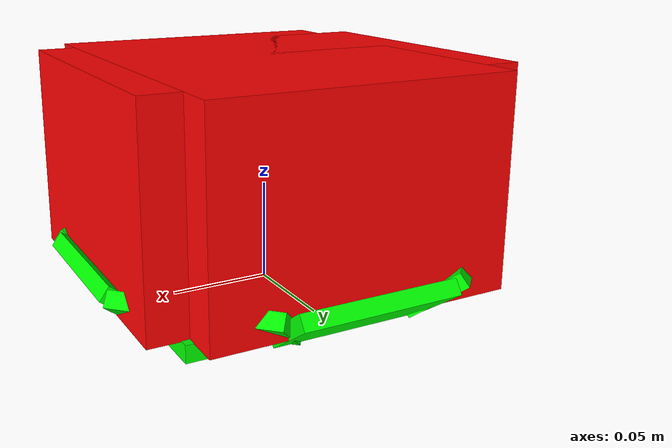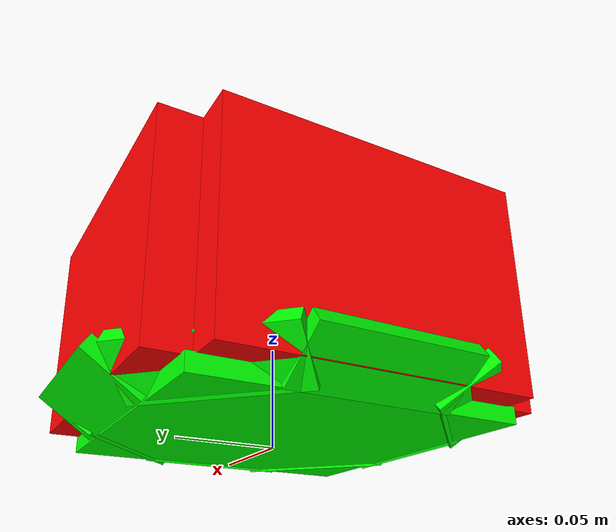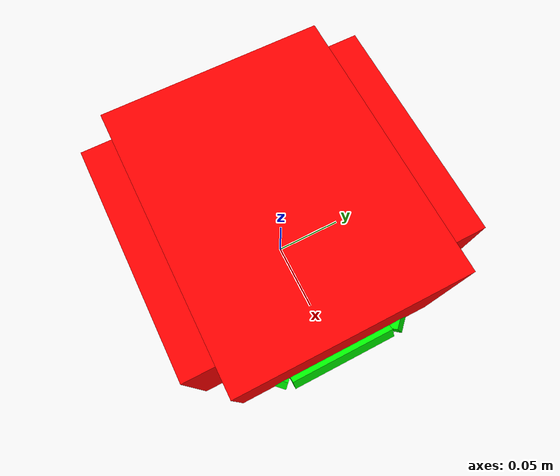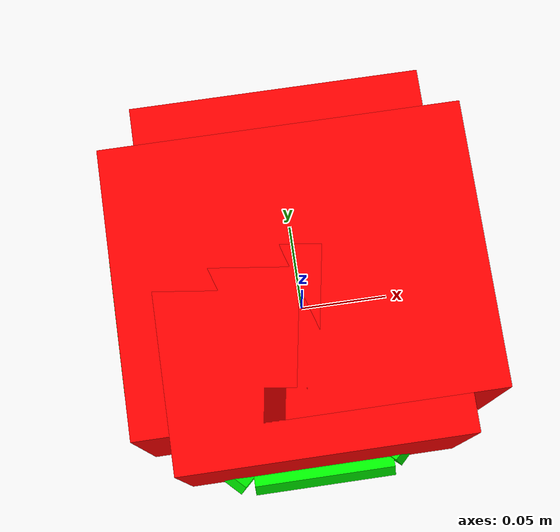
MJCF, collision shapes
<mujoco model="Plate_1">
  <compiler angle="radian" />
  <default>
    <default class="/">
      <default class="__VISUAL_MJT__">
        <geom contype="0" conaffinity="0" />
      </default>
      <default class="__STRUCTURAL_MJT__">
        <geom contype="8" conaffinity="15" group="4" friction="0.9 0.9 0.001" solref="0.025" solimp="0.998 0.998" />
      </default>
      <default class="__DYNAMIC_MJT__">
        <geom conaffinity="15" group="4" friction="0.9 0.9 0.001" solref="0.025" solimp="0.998 0.998" />
      </default>
    </default>
  </default>
  <asset>
    <material name="material_Plate_Decals_Off_Mat" class="/" rgba="0.878431 0.760784 0 1" metallic="0" roughness="0.5" />
    <material name="material_Plate_Mat1" class="/" rgba="0.878431 0.760784 0 1" metallic="0" roughness="0.5" />
    <mesh name="Plate_1_plate_1_0" class="/" content_type="model/obj" file="assets/Plate_1_plate_1/Plate_1_plate_1_0.obj" />
    <mesh name="Plate_1_plate_1_1" class="/" content_type="model/obj" file="assets/Plate_1_plate_1/Plate_1_plate_1_1.obj" />
  </asset>
  <worldbody>
    <body name="Plate_1" pos="0 0 0.015" quat="0.7071067811865476 0.7071067811865475 0 0">
      <joint name="Plate_1_free" class="/" type="free" limited="false" actuatorfrclimited="false" damping="0.1" />
      <geom name="Plate_1_plate_1_0" class="__VISUAL_MJT__" type="mesh" material="material_Plate_Decals_Off_Mat" mesh="Plate_1_plate_1_0" pos="-0.00191 -0.01118 0.00129" mass="0"/>
      <geom name="Plate_1_plate_1_1" class="__VISUAL_MJT__" type="mesh" material="material_Plate_Mat1" mesh="Plate_1_plate_1_1" pos="-0.00191 -0.01118 0.00129" mass="0"/>
      <geom name="Plate_1_plate_1_PrimitiveCollider_0" class="__DYNAMIC_MJT__" size="0.0780024 0.0041055 0.078476" pos="-0.00191 -0.00688356 0.00129" quat="0 1 0 0" type="box" rgba="0 1 0 1" density="1689.28"/>
      <geom name="Plate_1_plate_1_PrimitiveCollider_1" class="__DYNAMIC_MJT__" size="0.039162 0.0039029 0.0157566" pos="-0.00191000132 -4.84e-05 -0.0901137" quat="8.44623e-08 2.6788e-07 0.300706 -0.953717" type="box" rgba="0 1 0 1" density="1689.28"/>
      <geom name="Plate_1_plate_1_PrimitiveCollider_2" class="__DYNAMIC_MJT__" size="0.039162 0.0039029 0.0157566" pos="-0.00191107288 4.48e-05 0.0901173" quat="0 0 -0.300706 -0.953717" type="box" rgba="0 1 0 1" density="1689.28"/>
      <geom name="Plate_1_plate_1_PrimitiveCollider_3" class="__DYNAMIC_MJT__" size="0.039162 0.0039029 0.0157566" pos="0.0840749 4.48e-05 -7.471e-05" quat="0.212631 0.67438 0.212631 -0.67438" type="box" rgba="0 1 0 1" density="1689.28"/>
      <geom name="Plate_1_plate_1_PrimitiveCollider_4" class="__DYNAMIC_MJT__" size="0.039162 0.0039029 0.0157566" pos="-0.0920849 4.48e-05 -3.919e-05" quat="-0.212609 0.67431 -0.212653 -0.674449" type="box" rgba="0 1 0 1" density="1689.28"/>
      <geom name="Plate_1_plate_1_PrimitiveCollider_5" class="__DYNAMIC_MJT__" size="0.039162 0.0039029 0.0157566" pos="0.0611813 -4.84e-05 -0.062251" quat="0.115042 0.364866 0.27783 -0.881163" type="box" rgba="0 1 0 1" density="1689.28"/>
      <geom name="Plate_1_plate_1_PrimitiveCollider_6" class="__DYNAMIC_MJT__" size="0.039162 0.0039029 0.0157566" pos="-0.0662308 4.48e-05 0.0652215" quat="-0.115042 0.364866 -0.27783 -0.881163" type="box" rgba="0 1 0 1" density="1689.28"/>
      <geom name="Plate_1_plate_1_PrimitiveCollider_7" class="__DYNAMIC_MJT__" size="0.0391619 0.0039029 0.0157566" pos="0.0583451 4.48e-05 0.0622171" quat="0.277802 0.881076 0.115108 -0.365078" type="box" rgba="0 1 0 1" density="1689.28"/>
      <geom name="Plate_1_plate_1_PrimitiveCollider_8" class="__DYNAMIC_MJT__" size="0.0391619 0.0039029 0.0157566" pos="-0.0662739 4.48e-05 -0.062291" quat="-0.27779 0.881038 -0.115137 -0.365169" type="box" rgba="0 1 0 1" density="1689.28"/>
      <site name="Plate_1_plate_1_ReceptacleCollider_0" class="/" pos="-0.00191 0.0478572 0.00129" quat="0 1 0 0" size="0.0928703 0.0510603 0.074063" type="box" rgba="1 0 0 1" />
      <site name="Plate_1_plate_1_ReceptacleCollider_1" class="/" pos="-0.00191 0.0478572 0.00129" quat="0 0.707108 0 -0.707106" size="0.0935746 0.0510603 0.074063" type="box" rgba="1 0 0 1" />
    </body>
  </worldbody>
</mujoco>
